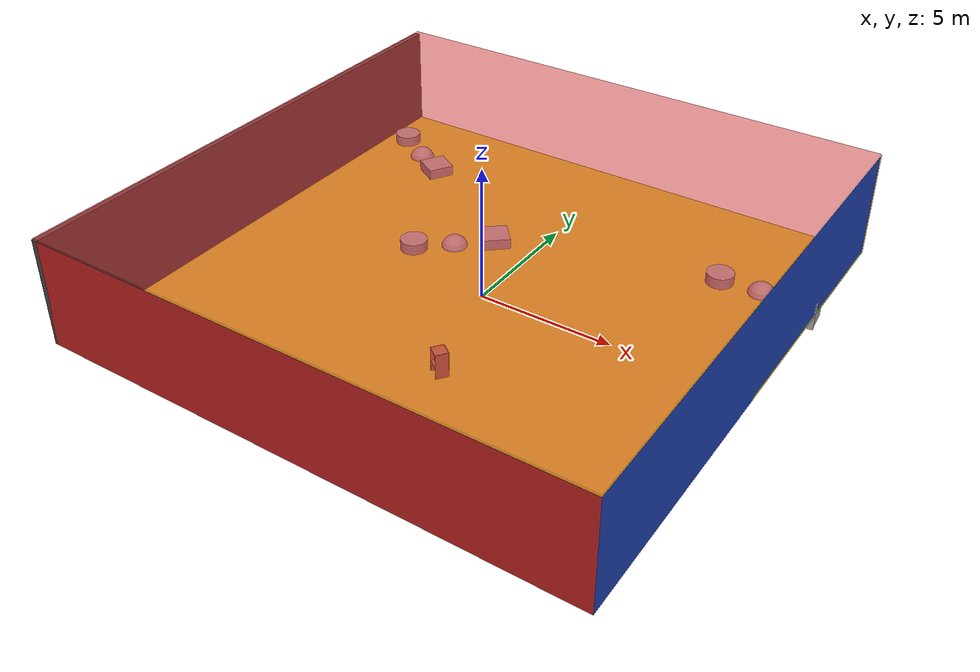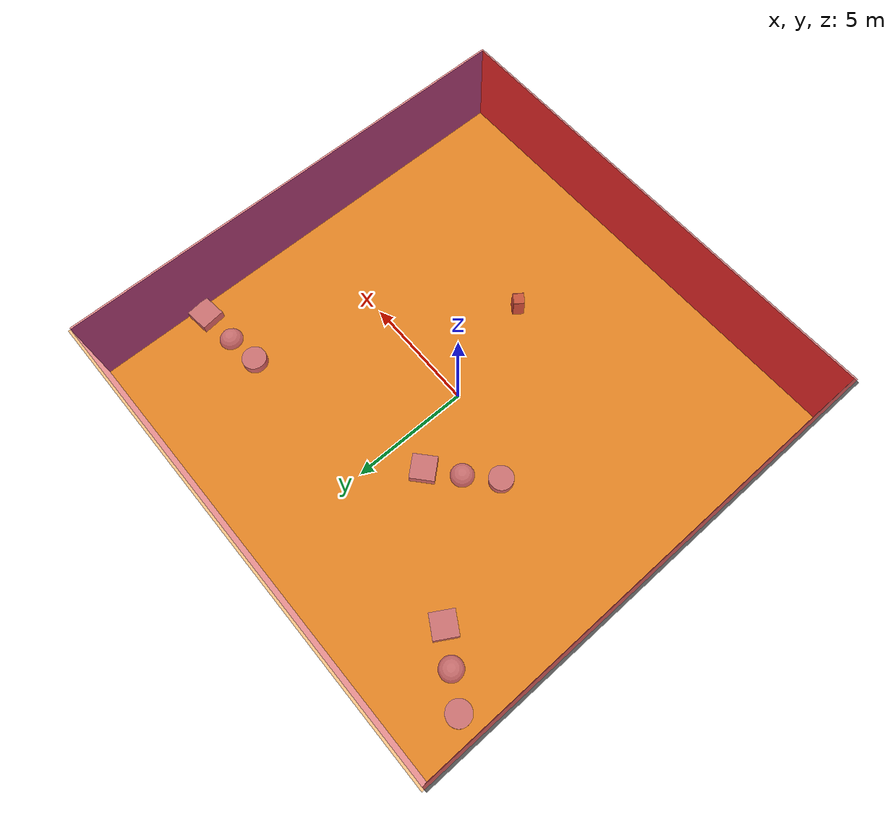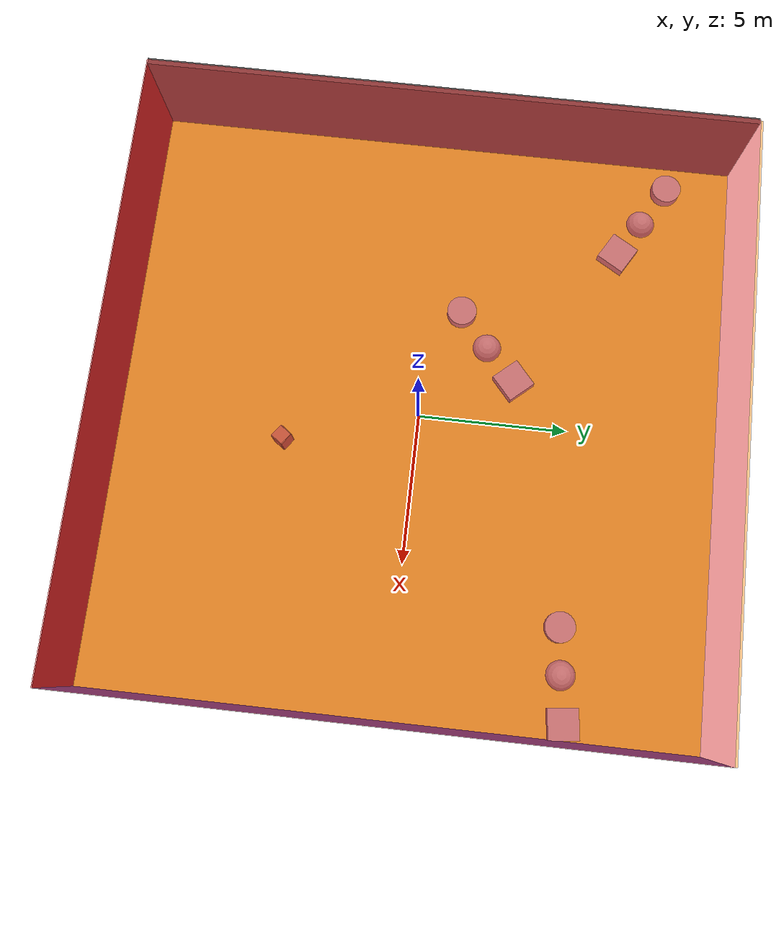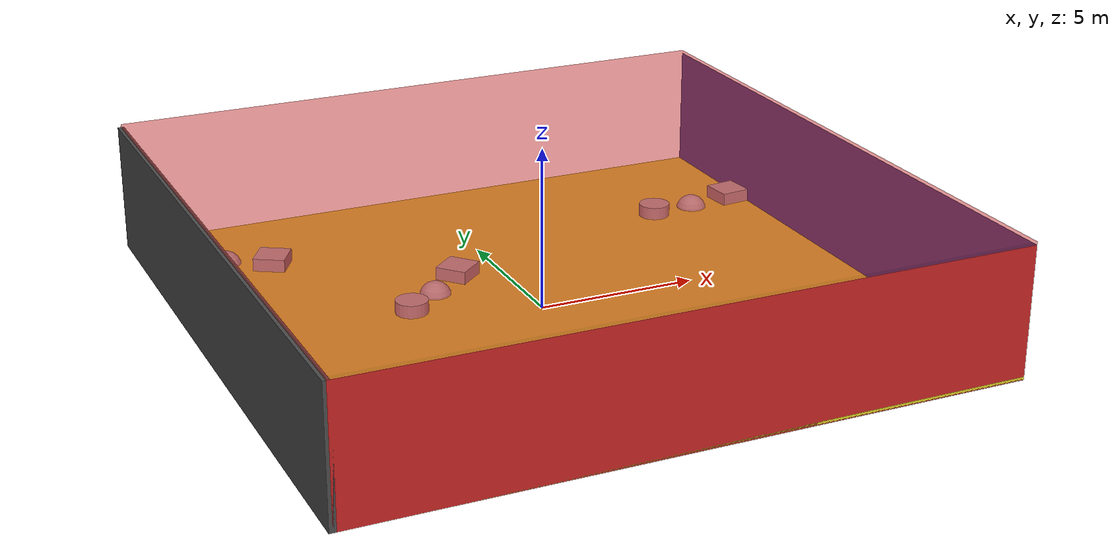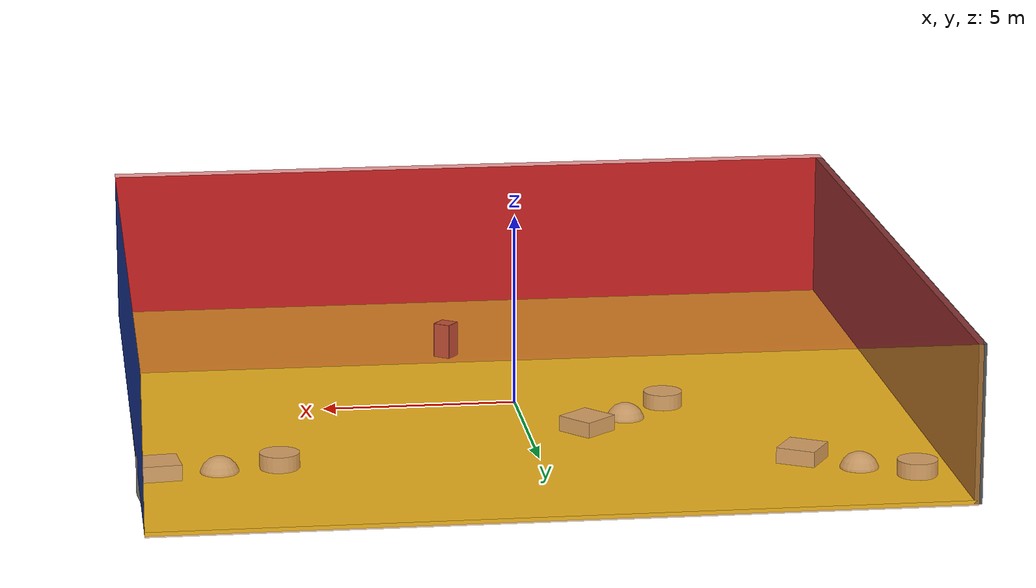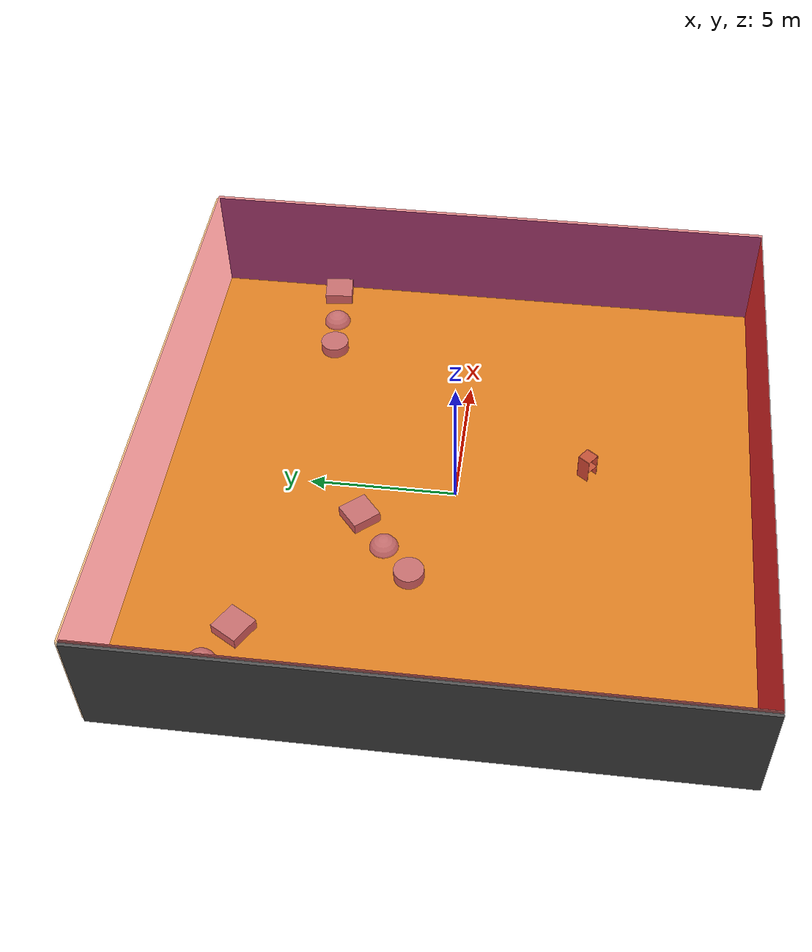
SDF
<sdf version="1.4">
 <world name="default">
  <physics type="ode">
   <max_step_size>0.001</max_step_size>
   <real_time_factor>1</real_time_factor>
   <real_time_update_rate>1000</real_time_update_rate>
   <gravity>0 0 -9.8</gravity>
  </physics>
  <scene><ambient>0.4 0.4 0.4 1</ambient><background>0.7 0.7 0.7 1</background><shadows>1</shadows></scene>
  <model name="Surrounding">
   <static>1</static>
   <link name="Ceiling">
    <collision name="Ceiling_Collision"><geometry><box><size>20 20 0.1</size></box></geometry></collision>
    <visual name="Ceiling_Visual">
     <geometry><box><size>20 20 0.1</size></box></geometry>
     <material>
      <script><uri>file://media/materials/scripts/gazebo.material</uri><name>Gazebo/RedTransparent</name></script>
     </material>
    </visual>
    <pose>0 0 4.05 0 0 0</pose>
   </link>
   <link name="Wall_South">
    <collision name="Wall_South_Collision">
     <geometry><box><size>20 0 4</size></box></geometry>
     <pose>0 0 2 0 -0 0</pose>
    </collision>
    <visual name="Wall_South_Visual">
     <pose>0 0 2 0 -0 0</pose>
     <geometry><box><size>20 0 4</size></box></geometry>
     <material>
      <script><uri>file://media/materials/scripts/gazebo.material</uri><name>Gazebo/RedGlow</name></script>
     </material>
    </visual>
    <velocity_decay><linear>0</linear><angular>0</angular></velocity_decay>
    <pose>0 -10 0 0 -0 0</pose>
   </link>
   <link name="Wall_East">
    <collision name="Wall_21_Collision">
     <geometry><box><size>20 0 4</size></box></geometry>
     <pose>0 0 2 0 -0 0</pose>
    </collision>
    <visual name="Wall_21_Visual">
     <pose>0 0 2 0 -0 0</pose>
     <geometry><box><size>20 0 4</size></box></geometry>
     <material>
      <script><uri>file://media/materials/scripts/gazebo.material</uri><name>Gazebo/Blue</name></script>
     </material>
    </visual>
    <velocity_decay><linear>0</linear><angular>0</angular></velocity_decay>
    <pose>10 0 0 0 -0 1.5708</pose>
   </link>
   <link name="Wall_North">
    <collision name="Wall_22_Collision">
     <geometry><box><size>20 0.2 4</size></box></geometry>
     <pose>0 0 2 0 -0 0</pose>
    </collision>
    <visual name="Wall_22_Visual">
     <pose>0 0 2 0 -0 0</pose>
     <geometry><box><size>20 0.2 4</size></box></geometry>
     <material>
      <script>
       <uri>file://media/materials/scripts/gazebo.material</uri>
       <name>Gazebo/OrangeTransparent</name>
      </script>
     </material>
    </visual>
    <velocity_decay><linear>0</linear><angular>0</angular></velocity_decay>
    <pose>0 10 0 0 -0 0</pose>
   </link>
   <link name="Wall_West">
    <collision name="Wall_23_Collision">
     <geometry><box><size>20 0.2 4</size></box></geometry>
     <pose>0 0 2 0 -0 0</pose>
    </collision>
    <visual name="Wall_23_Visual">
     <pose>0 0 2 0 -0 0</pose>
     <geometry><box><size>20 0.2 4</size></box></geometry>
     <material>
      <script><uri>file://media/materials/scripts/gazebo.material</uri><name>Gazebo/DarkGrey</name></script>
     </material>
    </visual>
    <velocity_decay><linear>0</linear><angular>0</angular></velocity_decay>
    <pose>-10 0 0 0 0 -1.5708</pose>
   </link>
   <link name="Ground_link">
    <collision name="collision">
     <pose>0 0 .05 0 -0 0</pose>
     <geometry><box><size>20 20 0.1</size></box></geometry>
    </collision>
    <visual name="visual">
     <pose>0 0 .05 0 -0 0</pose>
     <geometry><box><size>20 20 0.1</size></box></geometry>
     <material>
      <script><uri>file://media/materials/scripts/gazebo.material</uri><name>Gazebo/Yellow</name></script>
     </material>
    </visual>
   </link>
   <static>1</static>
  </model>
  <spherical_coordinates>
   <surface_model>EARTH_WGS84</surface_model>
   <latitude_deg>0</latitude_deg>
   <longitude_deg>0</longitude_deg>
   <elevation>0</elevation>
   <heading_deg>0</heading_deg>
  </spherical_coordinates>
  <light name="lightball_0" type="diffuse">
   <diffuse>0.8 0.8 0.8 1</diffuse>
   <specular>0.2 0.2 0.2 1</specular>
   <attenuation>
    <range>100</range>
    <constant>0.7</constant>
    <linear>0.01</linear>
    <quadratic>0.001</quadratic>
   </attenuation>
   <direction>-0.5 0.1 -0.9</direction>
   <pose>-0.632108122419 0.26516120996 1.79841425983 0 0 0</pose>
  </light>
  <light name="lightball_1" type="diffuse">
   <diffuse>0.8 0.8 0.8 1</diffuse>
   <specular>0.2 0.2 0.2 1</specular>
   <attenuation>
    <range>100</range>
    <constant>0.7</constant>
    <linear>0.01</linear>
    <quadratic>0.001</quadratic>
   </attenuation>
   <direction>-0.5 0.1 -0.9</direction>
   <pose>-1.12569657124 -1.87300735142 2.48309447292 0 0 0</pose>
  </light>
  <light name="lightball_2" type="diffuse">
   <diffuse>0.8 0.8 0.8 1</diffuse>
   <specular>0.2 0.2 0.2 1</specular>
   <attenuation>
    <range>100</range>
    <constant>0.7</constant>
    <linear>0.01</linear>
    <quadratic>0.001</quadratic>
   </attenuation>
   <direction>-0.5 0.1 -0.9</direction>
   <pose>7.44480237286 1.52508811755 1.42361567146 0 0 0</pose>
  </light>
  <light name="lightball_3" type="diffuse">
   <diffuse>0.8 0.8 0.8 1</diffuse>
   <specular>0.2 0.2 0.2 1</specular>
   <attenuation>
    <range>100</range>
    <constant>0.7</constant>
    <linear>0.01</linear>
    <quadratic>0.001</quadratic>
   </attenuation>
   <direction>-0.5 0.1 -0.9</direction>
   <pose>9.09413001655 -7.01666575139 1.39555273108 0 0 0</pose>
  </light>
  <light name="lightball_4" type="diffuse">
   <diffuse>0.8 0.8 0.8 1</diffuse>
   <specular>0.2 0.2 0.2 1</specular>
   <attenuation>
    <range>100</range>
    <constant>0.7</constant>
    <linear>0.01</linear>
    <quadratic>0.001</quadratic>
   </attenuation>
   <direction>-0.5 0.1 -0.9</direction>
   <pose>-1.90640880591 -6.61564699079 3.17702022167 0 0 0</pose>
  </light>
  <include>
   <uri>model://textured_shapes</uri>
   <pose>-7.7034220613 7.01349199895 0 0 0 1.03431409059</pose>
  </include>
  <include>
   <uri>model://textured_shapes</uri>
   <pose>-2.60624692173 2.07227843832 0 0 0 2.28662756968</pose>
  </include>
  <include><uri>model://cabinet</uri><pose>1.32799457343 -4.39624071007 0 0 0 0.932780615906</pose></include>
  <include>
   <uri>model://textured_shapes</uri>
   <pose>7.99023596727 5.43406423109 0 0 0 1.68097755977</pose>
  </include>
 </world>
</sdf>

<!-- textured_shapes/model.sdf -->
<sdf version="1.6">
  <model name="textured_shapes">
    <pose>0 0 0.5 0 0 0</pose>
    <link name="box">
      <pose>0 -1.5 0 0 0 0</pose>
      <collision name="collision">
        <geometry>
          <box>
            <size>1 1 1</size>
          </box>
        </geometry>
      </collision>
      <visual name="visual">
        <geometry>
          <box>
            <size>1 1 1</size>
          </box>
        </geometry>
        <material>
          <script>
            <uri>model://../model_source/models/textured_shapes/materials/scripts</uri>
            <uri>model://../model_source/models/textured_shapes/materials/textures</uri>
            <name>TexturedShape/Squares</name>
          </script>
        </material>
      </visual>
    </link>
    <link name="sphere">
      <collision name="collision">
        <geometry>
          <sphere>
            <radius>0.5</radius>
          </sphere>
        </geometry>
      </collision>
      <visual name="visual">
        <geometry>
          <sphere>
            <radius>0.5</radius>
          </sphere>
        </geometry>
        <material>
          <script>
            <uri>model://../model_source/models/textured_shapes/materials/scripts</uri>
            <uri>model://../model_source/models/textured_shapes/materials/textures</uri>
            <name>TexturedShape/Squares</name>
          </script>
        </material>
      </visual>
    </link>
    <link name="cylinder">
      <pose>0 1.5 0 0 0 0</pose>
      <collision name="collision">
        <geometry>
          <cylinder>
            <radius>0.5</radius>
            <length>1</length>
          </cylinder>
        </geometry>
      </collision>
      <visual name="visual">
        <geometry>
          <cylinder>
            <radius>0.5</radius>
            <length>1</length>
          </cylinder>
        </geometry>
        <material>
          <script>
            <uri>model://../model_source/models/textured_shapes/materials/scripts</uri>
            <uri>model://../model_source/models/textured_shapes/materials/textures</uri>
            <name>TexturedShape/Squares</name>
          </script>
        </material>
      </visual>
    </link>
  </model>
</sdf>

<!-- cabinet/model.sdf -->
<sdf version="1.5">
  <model name="cabinet">
    <static>true</static>
    <link name="cabinet_bottom_plate">
      <inertial>
        <pose>0 0 -1 0 0 0</pose>
        <inertia>
          <ixx>2.050000</ixx>
          <ixy>0</ixy>
          <ixz>0</ixz>
          <iyy>2.050000</iyy>
          <iyz>0</iyz>
          <izz>2.050000</izz>
        </inertia>
        <mass>25.000000</mass>
      </inertial>
      <collision name="cabinet_bottom_plate_geom">
        <pose>0 0 0.010000 0 0 0</pose>
        <geometry>
          <box>
            <size>0.450000 0.450000 0.020000</size>
          </box>
        </geometry>
      </collision>
      <visual name="cabinet_bottom_plate_geom_visual">
        <pose>0 0 0.010000 0 0 0</pose>
        <geometry>
          <box>
            <size>0.450000 0.450000 0.020000</size>
          </box>
        </geometry>
        <material>
          <script>
            <uri>model://media/materials/scripts/gazebo.material</uri>
            <name>Gazebo/Wood</name>
          </script>
        </material>
      </visual>
      <collision name="cabinet_bottom_plate_geom_cabinet_back_plate">
        <pose>0.235000 0 0.510000 0 0 0</pose>
        <geometry>
          <box>
            <size>0.020000 0.450000 1.020000</size>
          </box>
        </geometry>
      </collision>
      <visual name="cabinet_bottom_plate_geom_cabinet_back_plate_visual">
        <pose>0.235000 0 0.510000 0 0 0</pose>
        <geometry>
          <box>
            <size>0.020000 0.450000 1.020000</size>
          </box>
        </geometry>
        <material>
          <script>
            <uri>model://media/materials/scripts/gazebo.material</uri>
            <name>Gazebo/Wood</name>
          </script>
        </material>
      </visual>
      <collision name="cabinet_bottom_plate_geom_cabinet_left_plate">
        <pose>0 0.235000 0.510000 0 0 0</pose>
        <geometry>
          <box>
            <size>0.450000 0.020000 1.020000</size>
          </box>
        </geometry>
      </collision>
      <visual name="cabinet_bottom_plate_geom_cabinet_left_plate_visual">
        <pose>0 0.235000 0.510000 0 0 0</pose>
        <geometry>
          <box>
            <size>0.450000 0.020000 1.020000</size>
          </box>
        </geometry>
        <material>
          <script>
            <uri>model://media/materials/scripts/gazebo.material</uri>
            <name>Gazebo/Wood</name>
          </script>
        </material>
      </visual>
      <collision name="cabinet_bottom_plate_geom_cabinet_middle_plate">
        <pose>0 0 0.510000 0 0 0</pose>
        <geometry>
          <box>
            <size>0.450000 0.450000 0.020000</size>
          </box>
        </geometry>
      </collision>
      <visual name="cabinet_bottom_plate_geom_cabinet_middle_plate_visual">
        <pose>0 0 0.510000 0 0 0</pose>
        <geometry>
          <box>
            <size>0.450000 0.450000 0.020000</size>
          </box>
        </geometry>
        <material>
          <script>
            <uri>model://media/materials/scripts/gazebo.material</uri>
            <name>Gazebo/Wood</name>
          </script>
        </material>
      </visual>
      <collision name="cabinet_bottom_plate_geom_cabinet_right_plate">
        <pose>0 -0.235000 0.510000 0 0 0</pose>
        <geometry>
          <box>
            <size>0.450000 0.020000 1.020000</size>
          </box>
        </geometry>
      </collision>
      <visual name="cabinet_bottom_plate_geom_cabinet_right_plate_visual">
        <pose>0 -0.235000 0.510000 0 0 0</pose>
        <geometry>
          <box>
            <size>0.450000 0.020000 1.020000</size>
          </box>
        </geometry>
        <material>
          <script>
            <uri>model://media/materials/scripts/gazebo.material</uri>
            <name>Gazebo/Wood</name>
          </script>
        </material>
      </visual>
      <collision name="cabinet_bottom_plate_geom_cabinet_top_plate">
        <pose>0 0 1.010000 0 0 0</pose>
        <geometry>
          <box>
            <size>0.450000 0.450000 0.020000</size>
          </box>
        </geometry>
      </collision>
      <visual name="cabinet_bottom_plate_geom_cabinet_top_plate_visual">
        <pose>0 0 1.010000 0 0 0</pose>
        <geometry>
          <box>
            <size>0.450000 0.450000 0.020000</size>
          </box>
        </geometry>
        <material>
          <script>
            <uri>model://media/materials/scripts/gazebo.material</uri>
            <name>Gazebo/Wood</name>
          </script>
        </material>
      </visual>
    </link>
  </model>
</sdf>
